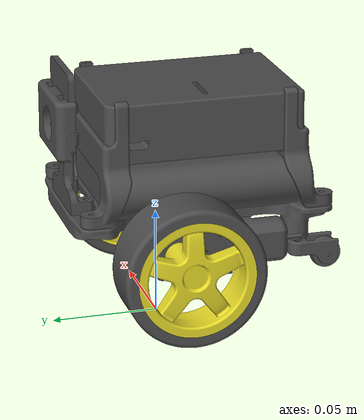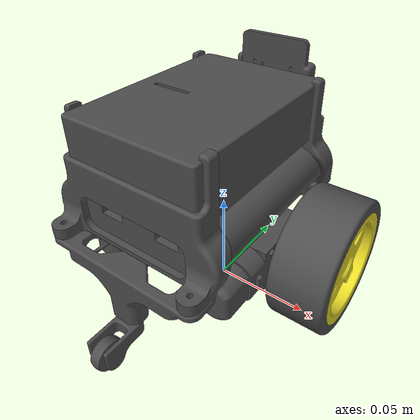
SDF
<?xml version='1.0'?>
<sdf version='1.4'>
  <model name="twister">
    <static>false</static>
    <pose>0 0 0.01 0 0 0</pose>

    <link name='chassis'>

      <visual name="twister_base">
        <geometry>
          <mesh><uri>file:///home/jst/development/puffin-pilot/twister/gazebo/twister_base.dae</uri></mesh>
        </geometry>
        <material>
          <script>
            <uri>file://media/materials/scripts/gazebo.material</uri>
            <name>Gazebo/DarkGrey</name>
          </script>
        </material>
      </visual>

      <visual name="twister_camera_holder">
        <pose>0 0.0448 0.0488 0 0 0</pose>
        <geometry>
          <mesh><uri>file:///home/jst/development/puffin-pilot/twister/gazebo/twister_camera_holder.dae</uri></mesh>
        </geometry>
        <material>
          <script>
            <uri>file://media/materials/scripts/gazebo.material</uri>
            <name>Gazebo/DarkGrey</name>
          </script>
        </material>
      </visual>

      <visual name="twister_battery_holder_front">
        <pose>0 0.0213 0.0488 0 0 3.14159</pose>
        <geometry>
          <mesh><uri>file:///home/jst/development/puffin-pilot/twister/gazebo/twister_battery_holder.dae</uri></mesh>
        </geometry>
        <material>
          <script>
            <uri>file://media/materials/scripts/gazebo.material</uri>
            <name>Gazebo/DarkGrey</name>
          </script>
        </material>
      </visual>

      <visual name="twister_battery_holder_back">
        <pose>0 -0.0517 0.0488 0 0 0</pose>
        <geometry>
          <mesh><uri>file:///home/jst/development/puffin-pilot/twister/gazebo/twister_battery_holder.dae</uri></mesh>
        </geometry>
        <material>
          <script>
            <uri>file://media/materials/scripts/gazebo.material</uri>
            <name>Gazebo/DarkGrey</name>
          </script>
        </material>
      </visual>

      <visual name="twister_motor_right">
        <pose>0.0497 0 0.03255 0 0 0</pose>
        <geometry>
          <mesh><uri>file:///home/jst/development/puffin-pilot/twister/gazebo/twister_motor.dae</uri></mesh>
        </geometry>
        <material>
          <script>
            <uri>file://media/materials/scripts/gazebo.material</uri>
            <name>Gazebo/DarkGrey</name>
          </script>
        </material>
      </visual>

      <visual name="twister_motor_left">
        <pose>-0.0497 0 0.03255 0 3.14159 0</pose>
        <geometry>
          <mesh><uri>file:///home/jst/development/puffin-pilot/twister/gazebo/twister_motor.dae</uri></mesh>
        </geometry>
        <material>
          <script>
            <uri>file://media/materials/scripts/gazebo.material</uri>
            <name>Gazebo/DarkGrey</name>
          </script>
        </material>
      </visual>

    </link>

    <link name='back_wheel'>
      <pose>0.0 -0.0687 0.0183 0 0 0</pose>

      <collision name="collision">
        <pose>0 -0.016 -0.008 0 1.5707 0</pose>
        <geometry>
          <cylinder>
            <radius>.01</radius>
            <length>.003</length>
          </cylinder>
        </geometry>
      </collision>

      <visual name="twister_back_wheel">
        <geometry>
          <mesh><uri>file:///home/jst/development/puffin-pilot/twister/gazebo/twister_back_wheel.dae</uri></mesh>
        </geometry>
        <material>
          <script>
            <uri>file://media/materials/scripts/gazebo.material</uri>
            <name>Gazebo/DarkGrey</name>
          </script>
        </material>
      </visual>

    </link>

    <link name='wheel_right'>
      <pose>0.0414 0 0.03255 0 0 0</pose>

      <collision name="collision">
        <pose>0.017 0 0 0 1.5707 0</pose>
        <geometry>
          <cylinder>
            <radius>.032255</radius>
            <length>.026</length>
          </cylinder>
        </geometry>
      </collision>

      <visual name="twister_rim_right">
        <geometry>
          <mesh><uri>file:///home/jst/development/puffin-pilot/twister/gazebo/twister_rim.dae</uri></mesh>
        </geometry>
        <material>
          <script>
            <uri>file://media/materials/scripts/gazebo.material</uri>
            <name>Gazebo/DarkYellow</name>
          </script>
        </material>
      </visual>

      <visual name="twister_tire_right">
        <geometry>
          <mesh><uri>file:///home/jst/development/puffin-pilot/twister/gazebo/twister_tire.dae</uri></mesh>
        </geometry>
        <material>
          <script>
            <uri>file://media/materials/scripts/gazebo.material</uri>
            <name>Gazebo/DarkGrey</name>
          </script>
        </material>
      </visual>

    </link>

    <link name='wheel_left'>

      <pose>-0.0414 0 0.03255 0 0 3.14159</pose>

      <collision name="collision">
        <pose>0.017 0 0 0 1.5707 0</pose>
        <geometry>
          <cylinder>
            <radius>.032255</radius>
            <length>.026</length>
          </cylinder>
        </geometry>
      </collision>

      <visual name="twister_rim_left">
        <geometry>
          <mesh><uri>file:///home/jst/development/puffin-pilot/twister/gazebo/twister_rim.dae</uri></mesh>
        </geometry>
        <material>
          <script>
            <uri>file://media/materials/scripts/gazebo.material</uri>
            <name>Gazebo/DarkYellow</name>
          </script>
        </material>
      </visual>

      <visual name="twister_tire_left">
        <geometry>
          <mesh><uri>file:///home/jst/development/puffin-pilot/twister/gazebo/twister_tire.dae</uri></mesh>
        </geometry>
        <material>
          <script>
            <uri>file://media/materials/scripts/gazebo.material</uri>
            <name>Gazebo/DarkGrey</name>
          </script>
        </material>
      </visual>

    </link>

    <joint type="revolute" name="right_wheel_hinge">
      <pose>0 0 0 0 0 0</pose>
      <child>wheel_right</child>
      <parent>chassis</parent>
      <axis>
        <xyz>-1 0 0</xyz>
      </axis>
    </joint>

    <joint type="revolute" name="left_wheel_hinge">
      <pose>0 0 0 0 0 0</pose>
      <child>wheel_left</child>
      <parent>chassis</parent>
      <axis>
        <xyz>-1 0 0</xyz>
      </axis>
    </joint>

    <joint type="revolute" name="back_wheel_hinge">
      <pose>0 0 0 0 0 0</pose>
      <child>back_wheel</child>
      <parent>chassis</parent>
      <axis>
        <xyz>0 0 1</xyz>
      </axis>
    </joint>

  </model>
</sdf>
